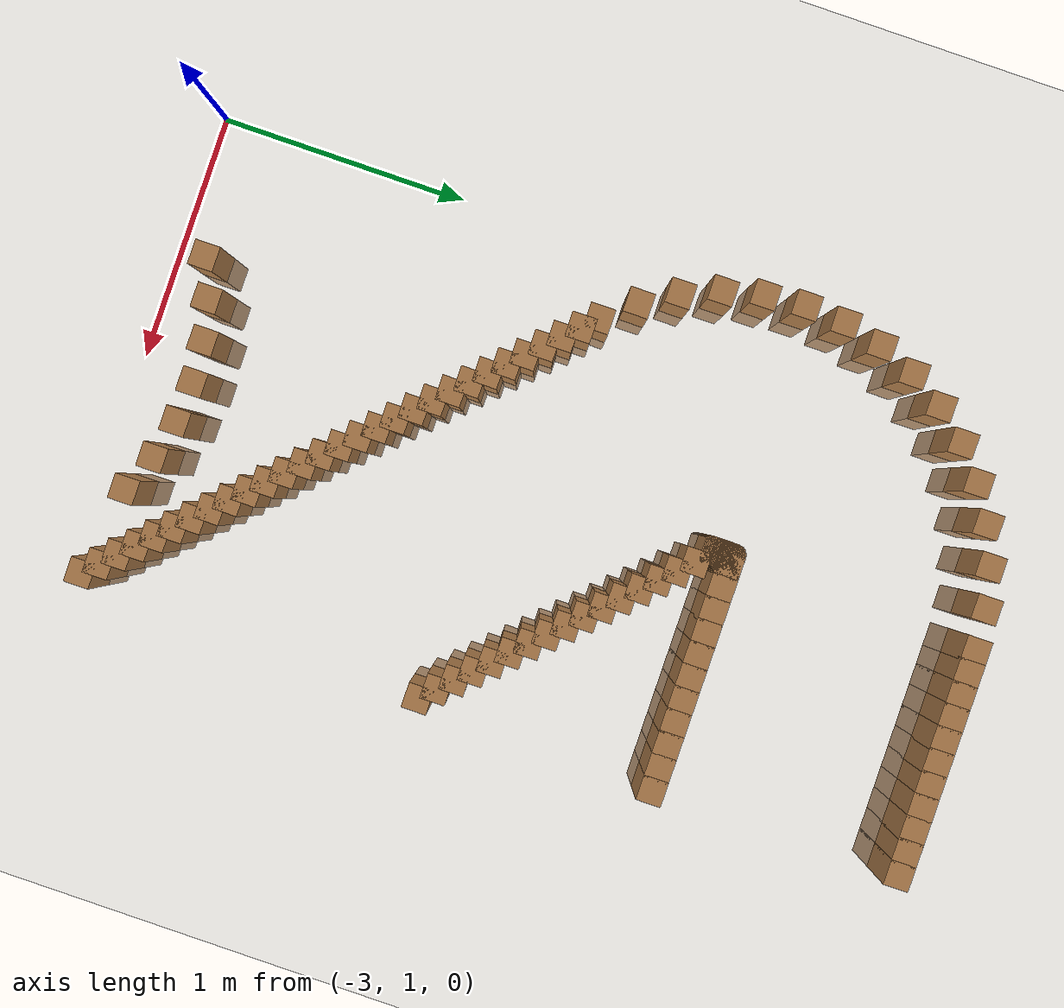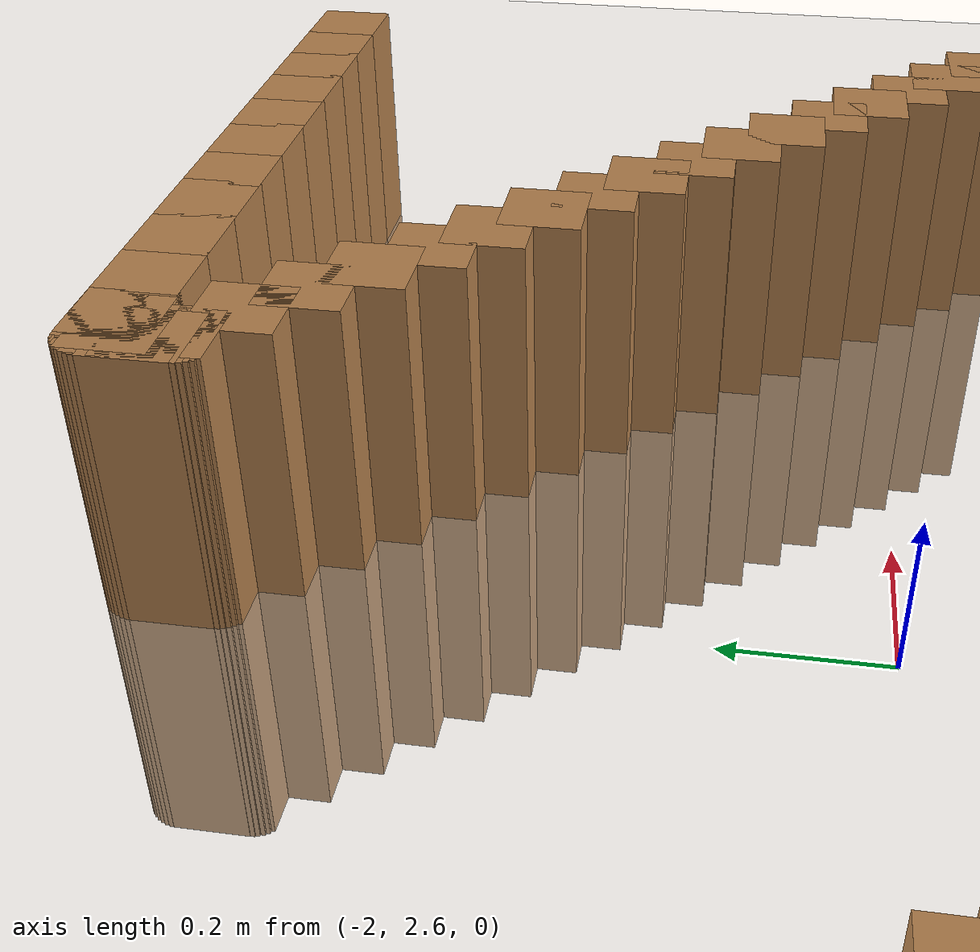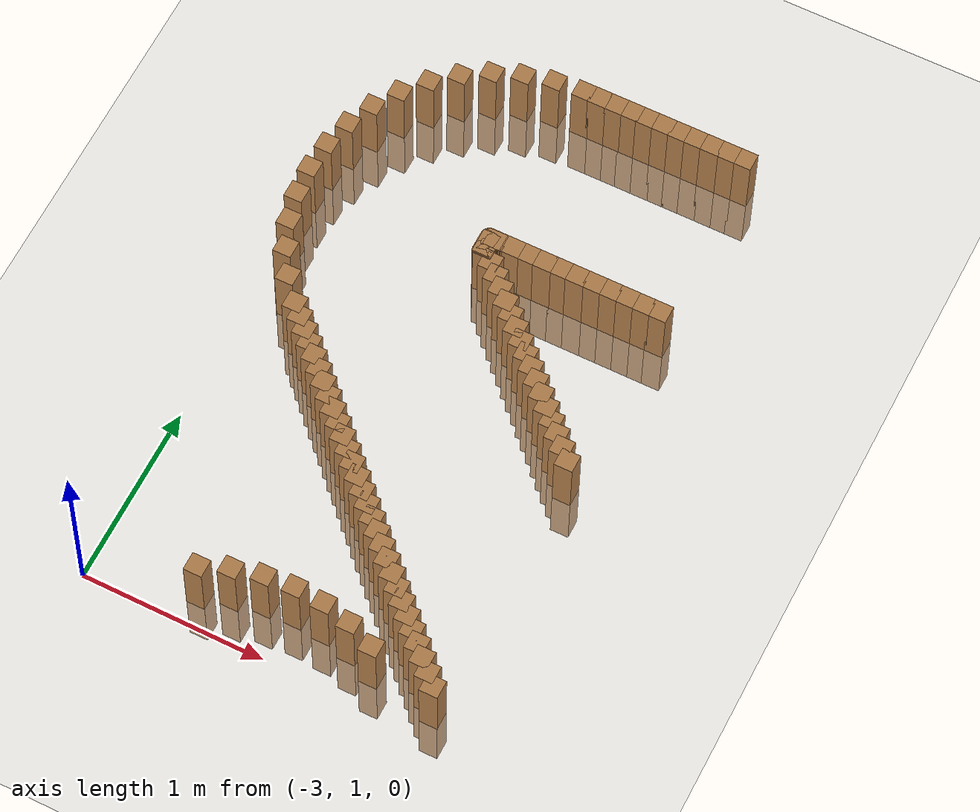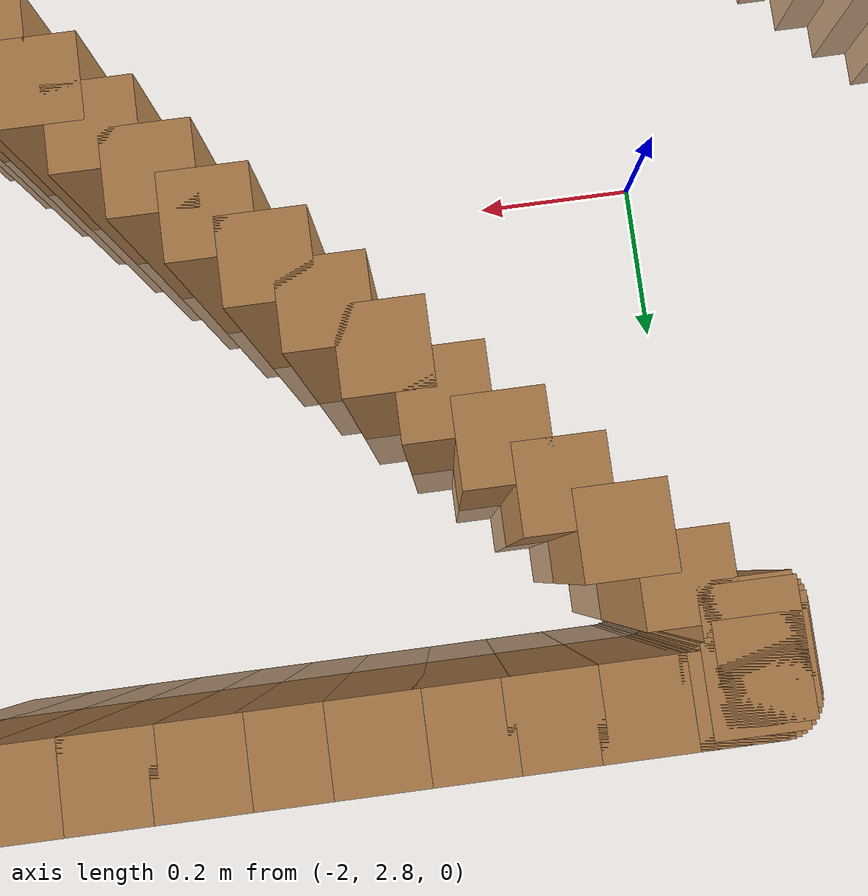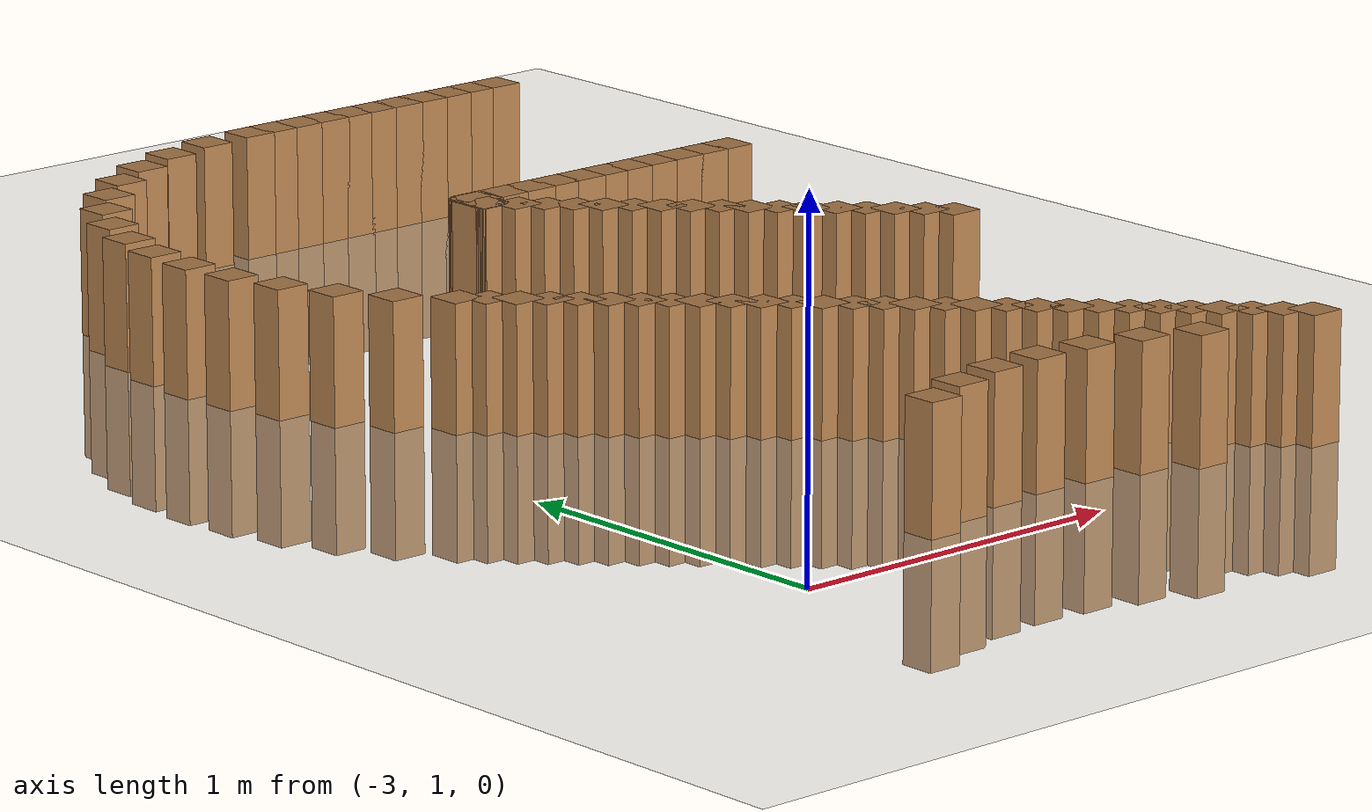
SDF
<sdf version="1.6">
 <world name="default">
  <model name="ground_plane">
   <static>1</static>
   <link name="link">
    <collision name="collision">
     <geometry><plane><normal>0 0 1</normal><size>100 100</size></plane></geometry>
     <surface><friction><ode><mu>100</mu><mu2>50</mu2></ode></friction></surface>
    </collision>
    <visual name="visual">
     <cast_shadows>0</cast_shadows>
     <geometry><plane><normal>0 0 1</normal><size>100 100</size></plane></geometry>
     <material>
      <script><uri>file://media/materials/scripts/gazebo.material</uri><name>Gazebo/Grey</name></script>
     </material>
    </visual>
   </link>
  </model>
  <model name="track">
   <link name="inner_0">
    <pose>-1.932240 3.320853 0.000000 0 -0 0</pose>
    <collision name="collision"><geometry><box><size>0.1 0.1 0.7</size></box></geometry></collision>
    <visual name="visual">
     <geometry><box><size>0.1 0.1 0.7</size></box></geometry>
     <material>
      <script><uri>file://media/materials/scripts/gazebo.material</uri><name>Gazebo/Wood</name></script>
     </material>
    </visual>
   </link>
   <link name="inner_1">
    <pose>-1.876353 3.264966 0.000000 0 -0 0</pose>
    <collision name="collision"><geometry><box><size>0.1 0.1 0.7</size></box></geometry></collision>
    <visual name="visual">
     <geometry><box><size>0.1 0.1 0.7</size></box></geometry>
     <material>
      <script><uri>file://media/materials/scripts/gazebo.material</uri><name>Gazebo/Wood</name></script>
     </material>
    </visual>
   </link>
   <link name="inner_2">
    <pose>-1.820467 3.209080 0.000000 0 -0 0</pose>
    <collision name="collision"><geometry><box><size>0.1 0.1 0.7</size></box></geometry></collision>
    <visual name="visual">
     <geometry><box><size>0.1 0.1 0.7</size></box></geometry>
     <material>
      <script><uri>file://media/materials/scripts/gazebo.material</uri><name>Gazebo/Wood</name></script>
     </material>
    </visual>
   </link>
   <link name="inner_3">
    <pose>-1.764580 3.153193 0.000000 0 -0 0</pose>
    <collision name="collision"><geometry><box><size>0.1 0.1 0.7</size></box></geometry></collision>
    <visual name="visual">
     <geometry><box><size>0.1 0.1 0.7</size></box></geometry>
     <material>
      <script><uri>file://media/materials/scripts/gazebo.material</uri><name>Gazebo/Wood</name></script>
     </material>
    </visual>
   </link>
   <link name="inner_4">
    <pose>-1.708694 3.097307 0.000000 0 -0 0</pose>
    <collision name="collision"><geometry><box><size>0.1 0.1 0.7</size></box></geometry></collision>
    <visual name="visual">
     <geometry><box><size>0.1 0.1 0.7</size></box></geometry>
     <material>
      <script><uri>file://media/materials/scripts/gazebo.material</uri><name>Gazebo/Wood</name></script>
     </material>
    </visual>
   </link>
   <link name="inner_5">
    <pose>-1.652808 3.041421 0.000000 0 -0 0</pose>
    <collision name="collision"><geometry><box><size>0.1 0.1 0.7</size></box></geometry></collision>
    <visual name="visual">
     <geometry><box><size>0.1 0.1 0.7</size></box></geometry>
     <material>
      <script><uri>file://media/materials/scripts/gazebo.material</uri><name>Gazebo/Wood</name></script>
     </material>
    </visual>
   </link>
   <link name="inner_6">
    <pose>-1.596921 2.985534 0.000000 0 -0 0</pose>
    <collision name="collision"><geometry><box><size>0.1 0.1 0.7</size></box></geometry></collision>
    <visual name="visual">
     <geometry><box><size>0.1 0.1 0.7</size></box></geometry>
     <material>
      <script><uri>file://media/materials/scripts/gazebo.material</uri><name>Gazebo/Wood</name></script>
     </material>
    </visual>
   </link>
   <link name="inner_7">
    <pose>-1.541035 2.929648 0.000000 0 -0 0</pose>
    <collision name="collision"><geometry><box><size>0.1 0.1 0.7</size></box></geometry></collision>
    <visual name="visual">
     <geometry><box><size>0.1 0.1 0.7</size></box></geometry>
     <material>
      <script><uri>file://media/materials/scripts/gazebo.material</uri><name>Gazebo/Wood</name></script>
     </material>
    </visual>
   </link>
   <link name="inner_8">
    <pose>-1.485148 2.873761 0.000000 0 -0 0</pose>
    <collision name="collision"><geometry><box><size>0.1 0.1 0.7</size></box></geometry></collision>
    <visual name="visual">
     <geometry><box><size>0.1 0.1 0.7</size></box></geometry>
     <material>
      <script><uri>file://media/materials/scripts/gazebo.material</uri><name>Gazebo/Wood</name></script>
     </material>
    </visual>
   </link>
   <link name="inner_9">
    <pose>-1.429262 2.817875 0.000000 0 -0 0</pose>
    <collision name="collision"><geometry><box><size>0.1 0.1 0.7</size></box></geometry></collision>
    <visual name="visual">
     <geometry><box><size>0.1 0.1 0.7</size></box></geometry>
     <material>
      <script><uri>file://media/materials/scripts/gazebo.material</uri><name>Gazebo/Wood</name></script>
     </material>
    </visual>
   </link>
   <link name="inner_10">
    <pose>-1.373376 2.761989 0.000000 0 -0 0</pose>
    <collision name="collision"><geometry><box><size>0.1 0.1 0.7</size></box></geometry></collision>
    <visual name="visual">
     <geometry><box><size>0.1 0.1 0.7</size></box></geometry>
     <material>
      <script><uri>file://media/materials/scripts/gazebo.material</uri><name>Gazebo/Wood</name></script>
     </material>
    </visual>
   </link>
   <link name="inner_11">
    <pose>-1.317489 2.706102 0.000000 0 -0 0</pose>
    <collision name="collision"><geometry><box><size>0.1 0.1 0.7</size></box></geometry></collision>
    <visual name="visual">
     <geometry><box><size>0.1 0.1 0.7</size></box></geometry>
     <material>
      <script><uri>file://media/materials/scripts/gazebo.material</uri><name>Gazebo/Wood</name></script>
     </material>
    </visual>
   </link>
   <link name="inner_12">
    <pose>-1.261603 2.650216 0.000000 0 -0 0</pose>
    <collision name="collision"><geometry><box><size>0.1 0.1 0.7</size></box></geometry></collision>
    <visual name="visual">
     <geometry><box><size>0.1 0.1 0.7</size></box></geometry>
     <material>
      <script><uri>file://media/materials/scripts/gazebo.material</uri><name>Gazebo/Wood</name></script>
     </material>
    </visual>
   </link>
   <link name="inner_13">
    <pose>-1.205716 2.594329 0.000000 0 -0 0</pose>
    <collision name="collision"><geometry><box><size>0.1 0.1 0.7</size></box></geometry></collision>
    <visual name="visual">
     <geometry><box><size>0.1 0.1 0.7</size></box></geometry>
     <material>
      <script><uri>file://media/materials/scripts/gazebo.material</uri><name>Gazebo/Wood</name></script>
     </material>
    </visual>
   </link>
   <link name="inner_14">
    <pose>-1.149830 2.538443 0.000000 0 -0 0</pose>
    <collision name="collision"><geometry><box><size>0.1 0.1 0.7</size></box></geometry></collision>
    <visual name="visual">
     <geometry><box><size>0.1 0.1 0.7</size></box></geometry>
     <material>
      <script><uri>file://media/materials/scripts/gazebo.material</uri><name>Gazebo/Wood</name></script>
     </material>
    </visual>
   </link>
   <link name="inner_15">
    <pose>-1.093944 2.482557 0.000000 0 -0 0</pose>
    <collision name="collision"><geometry><box><size>0.1 0.1 0.7</size></box></geometry></collision>
    <visual name="visual">
     <geometry><box><size>0.1 0.1 0.7</size></box></geometry>
     <material>
      <script><uri>file://media/materials/scripts/gazebo.material</uri><name>Gazebo/Wood</name></script>
     </material>
    </visual>
   </link>
   <link name="inner_640">
    <pose>-1.050676 3.445946 0.000000 0 -0 0</pose>
    <collision name="collision"><geometry><box><size>0.1 0.1 0.7</size></box></geometry></collision>
    <visual name="visual">
     <geometry><box><size>0.1 0.1 0.7</size></box></geometry>
     <material>
      <script><uri>file://media/materials/scripts/gazebo.material</uri><name>Gazebo/Wood</name></script>
     </material>
    </visual>
   </link>
   <link name="inner_641">
    <pose>-1.141554 3.445946 0.000000 0 -0 0</pose>
    <collision name="collision"><geometry><box><size>0.1 0.1 0.7</size></box></geometry></collision>
    <visual name="visual">
     <geometry><box><size>0.1 0.1 0.7</size></box></geometry>
     <material>
      <script><uri>file://media/materials/scripts/gazebo.material</uri><name>Gazebo/Wood</name></script>
     </material>
    </visual>
   </link>
   <link name="inner_642">
    <pose>-1.232432 3.445946 0.000000 0 -0 0</pose>
    <collision name="collision"><geometry><box><size>0.1 0.1 0.7</size></box></geometry></collision>
    <visual name="visual">
     <geometry><box><size>0.1 0.1 0.7</size></box></geometry>
     <material>
      <script><uri>file://media/materials/scripts/gazebo.material</uri><name>Gazebo/Wood</name></script>
     </material>
    </visual>
   </link>
   <link name="inner_643">
    <pose>-1.323311 3.445946 0.000000 0 -0 0</pose>
    <collision name="collision"><geometry><box><size>0.1 0.1 0.7</size></box></geometry></collision>
    <visual name="visual">
     <geometry><box><size>0.1 0.1 0.7</size></box></geometry>
     <material>
      <script><uri>file://media/materials/scripts/gazebo.material</uri><name>Gazebo/Wood</name></script>
     </material>
    </visual>
   </link>
   <link name="inner_644">
    <pose>-1.414189 3.445946 0.000000 0 -0 0</pose>
    <collision name="collision"><geometry><box><size>0.1 0.1 0.7</size></box></geometry></collision>
    <visual name="visual">
     <geometry><box><size>0.1 0.1 0.7</size></box></geometry>
     <material>
      <script><uri>file://media/materials/scripts/gazebo.material</uri><name>Gazebo/Wood</name></script>
     </material>
    </visual>
   </link>
   <link name="inner_645">
    <pose>-1.505068 3.445946 0.000000 0 -0 0</pose>
    <collision name="collision"><geometry><box><size>0.1 0.1 0.7</size></box></geometry></collision>
    <visual name="visual">
     <geometry><box><size>0.1 0.1 0.7</size></box></geometry>
     <material>
      <script><uri>file://media/materials/scripts/gazebo.material</uri><name>Gazebo/Wood</name></script>
     </material>
    </visual>
   </link>
   <link name="inner_646">
    <pose>-1.595946 3.445946 0.000000 0 -0 0</pose>
    <collision name="collision"><geometry><box><size>0.1 0.1 0.7</size></box></geometry></collision>
    <visual name="visual">
     <geometry><box><size>0.1 0.1 0.7</size></box></geometry>
     <material>
      <script><uri>file://media/materials/scripts/gazebo.material</uri><name>Gazebo/Wood</name></script>
     </material>
    </visual>
   </link>
   <link name="inner_647">
    <pose>-1.686824 3.445946 0.000000 0 -0 0</pose>
    <collision name="collision"><geometry><box><size>0.1 0.1 0.7</size></box></geometry></collision>
    <visual name="visual">
     <geometry><box><size>0.1 0.1 0.7</size></box></geometry>
     <material>
      <script><uri>file://media/materials/scripts/gazebo.material</uri><name>Gazebo/Wood</name></script>
     </material>
    </visual>
   </link>
   <link name="inner_648">
    <pose>-1.777703 3.445946 0.000000 0 -0 0</pose>
    <collision name="collision"><geometry><box><size>0.1 0.1 0.7</size></box></geometry></collision>
    <visual name="visual">
     <geometry><box><size>0.1 0.1 0.7</size></box></geometry>
     <material>
      <script><uri>file://media/materials/scripts/gazebo.material</uri><name>Gazebo/Wood</name></script>
     </material>
    </visual>
   </link>
   <link name="inner_649">
    <pose>-1.868581 3.445946 0.000000 0 -0 0</pose>
    <collision name="collision"><geometry><box><size>0.1 0.1 0.7</size></box></geometry></collision>
    <visual name="visual">
     <geometry><box><size>0.1 0.1 0.7</size></box></geometry>
     <material>
      <script><uri>file://media/materials/scripts/gazebo.material</uri><name>Gazebo/Wood</name></script>
     </material>
    </visual>
   </link>
   <link name="inner_650">
    <pose>-1.959459 3.445946 0.000000 0 -0 0</pose>
    <collision name="collision"><geometry><box><size>0.1 0.1 0.7</size></box></geometry></collision>
    <visual name="visual">
     <geometry><box><size>0.1 0.1 0.7</size></box></geometry>
     <material>
      <script><uri>file://media/materials/scripts/gazebo.material</uri><name>Gazebo/Wood</name></script>
     </material>
    </visual>
   </link>
   <link name="inner_651">
    <pose>-1.965801 3.445447 0.000000 0 -0 0</pose>
    <collision name="collision"><geometry><box><size>0.1 0.1 0.7</size></box></geometry></collision>
    <visual name="visual">
     <geometry><box><size>0.1 0.1 0.7</size></box></geometry>
     <material>
      <script><uri>file://media/materials/scripts/gazebo.material</uri><name>Gazebo/Wood</name></script>
     </material>
    </visual>
   </link>
   <link name="inner_652">
    <pose>-1.971987 3.443962 0.000000 0 -0 0</pose>
    <collision name="collision"><geometry><box><size>0.1 0.1 0.7</size></box></geometry></collision>
    <visual name="visual">
     <geometry><box><size>0.1 0.1 0.7</size></box></geometry>
     <material>
      <script><uri>file://media/materials/scripts/gazebo.material</uri><name>Gazebo/Wood</name></script>
     </material>
    </visual>
   </link>
   <link name="inner_653">
    <pose>-1.977864 3.441527 0.000000 0 -0 0</pose>
    <collision name="collision"><geometry><box><size>0.1 0.1 0.7</size></box></geometry></collision>
    <visual name="visual">
     <geometry><box><size>0.1 0.1 0.7</size></box></geometry>
     <material>
      <script><uri>file://media/materials/scripts/gazebo.material</uri><name>Gazebo/Wood</name></script>
     </material>
    </visual>
   </link>
   <link name="inner_654">
    <pose>-1.983289 3.438203 0.000000 0 -0 0</pose>
    <collision name="collision"><geometry><box><size>0.1 0.1 0.7</size></box></geometry></collision>
    <visual name="visual">
     <geometry><box><size>0.1 0.1 0.7</size></box></geometry>
     <material>
      <script><uri>file://media/materials/scripts/gazebo.material</uri><name>Gazebo/Wood</name></script>
     </material>
    </visual>
   </link>
   <link name="inner_655">
    <pose>-1.988126 3.434072 0.000000 0 -0 0</pose>
    <collision name="collision"><geometry><box><size>0.1 0.1 0.7</size></box></geometry></collision>
    <visual name="visual">
     <geometry><box><size>0.1 0.1 0.7</size></box></geometry>
     <material>
      <script><uri>file://media/materials/scripts/gazebo.material</uri><name>Gazebo/Wood</name></script>
     </material>
    </visual>
   </link>
   <link name="inner_656">
    <pose>-1.992257 3.429235 0.000000 0 -0 0</pose>
    <collision name="collision"><geometry><box><size>0.1 0.1 0.7</size></box></geometry></collision>
    <visual name="visual">
     <geometry><box><size>0.1 0.1 0.7</size></box></geometry>
     <material>
      <script><uri>file://media/materials/scripts/gazebo.material</uri><name>Gazebo/Wood</name></script>
     </material>
    </visual>
   </link>
   <link name="inner_657">
    <pose>-1.995581 3.423810 0.000000 0 -0 0</pose>
    <collision name="collision"><geometry><box><size>0.1 0.1 0.7</size></box></geometry></collision>
    <visual name="visual">
     <geometry><box><size>0.1 0.1 0.7</size></box></geometry>
     <material>
      <script><uri>file://media/materials/scripts/gazebo.material</uri><name>Gazebo/Wood</name></script>
     </material>
    </visual>
   </link>
   <link name="inner_658">
    <pose>-1.998016 3.417933 0.000000 0 -0 0</pose>
    <collision name="collision"><geometry><box><size>0.1 0.1 0.7</size></box></geometry></collision>
    <visual name="visual">
     <geometry><box><size>0.1 0.1 0.7</size></box></geometry>
     <material>
      <script><uri>file://media/materials/scripts/gazebo.material</uri><name>Gazebo/Wood</name></script>
     </material>
    </visual>
   </link>
   <link name="inner_659">
    <pose>-1.999501 3.411747 0.000000 0 -0 0</pose>
    <collision name="collision"><geometry><box><size>0.1 0.1 0.7</size></box></geometry></collision>
    <visual name="visual">
     <geometry><box><size>0.1 0.1 0.7</size></box></geometry>
     <material>
      <script><uri>file://media/materials/scripts/gazebo.material</uri><name>Gazebo/Wood</name></script>
     </material>
    </visual>
   </link>
   <link name="inner_660">
    <pose>-2.000000 3.405405 0.000000 0 -0 0</pose>
    <collision name="collision"><geometry><box><size>0.1 0.1 0.7</size></box></geometry></collision>
    <visual name="visual">
     <geometry><box><size>0.1 0.1 0.7</size></box></geometry>
     <material>
      <script><uri>file://media/materials/scripts/gazebo.material</uri><name>Gazebo/Wood</name></script>
     </material>
    </visual>
   </link>
   <link name="inner_661">
    <pose>-1.999501 3.399063 0.000000 0 -0 0</pose>
    <collision name="collision"><geometry><box><size>0.1 0.1 0.7</size></box></geometry></collision>
    <visual name="visual">
     <geometry><box><size>0.1 0.1 0.7</size></box></geometry>
     <material>
      <script><uri>file://media/materials/scripts/gazebo.material</uri><name>Gazebo/Wood</name></script>
     </material>
    </visual>
   </link>
   <link name="inner_662">
    <pose>-1.998016 3.392878 0.000000 0 -0 0</pose>
    <collision name="collision"><geometry><box><size>0.1 0.1 0.7</size></box></geometry></collision>
    <visual name="visual">
     <geometry><box><size>0.1 0.1 0.7</size></box></geometry>
     <material>
      <script><uri>file://media/materials/scripts/gazebo.material</uri><name>Gazebo/Wood</name></script>
     </material>
    </visual>
   </link>
   <link name="inner_663">
    <pose>-1.995581 3.387000 0.000000 0 -0 0</pose>
    <collision name="collision"><geometry><box><size>0.1 0.1 0.7</size></box></geometry></collision>
    <visual name="visual">
     <geometry><box><size>0.1 0.1 0.7</size></box></geometry>
     <material>
      <script><uri>file://media/materials/scripts/gazebo.material</uri><name>Gazebo/Wood</name></script>
     </material>
    </visual>
   </link>
   <link name="inner_664">
    <pose>-1.992257 3.381576 0.000000 0 -0 0</pose>
    <collision name="collision"><geometry><box><size>0.1 0.1 0.7</size></box></geometry></collision>
    <visual name="visual">
     <geometry><box><size>0.1 0.1 0.7</size></box></geometry>
     <material>
      <script><uri>file://media/materials/scripts/gazebo.material</uri><name>Gazebo/Wood</name></script>
     </material>
    </visual>
   </link>
   <link name="inner_665">
    <pose>-1.988126 3.376739 0.000000 0 -0 0</pose>
    <collision name="collision"><geometry><box><size>0.1 0.1 0.7</size></box></geometry></collision>
    <visual name="visual">
     <geometry><box><size>0.1 0.1 0.7</size></box></geometry>
     <material>
      <script><uri>file://media/materials/scripts/gazebo.material</uri><name>Gazebo/Wood</name></script>
     </material>
    </visual>
   </link>
   <link name="outer_0">
    <pose>-2.639346 2.613746 0.000000 0 -0 0</pose>
    <collision name="collision"><geometry><box><size>0.1 0.1 0.7</size></box></geometry></collision>
    <visual name="visual">
     <geometry><box><size>0.1 0.1 0.7</size></box></geometry>
     <material>
      <script><uri>file://media/materials/scripts/gazebo.material</uri><name>Gazebo/Wood</name></script>
     </material>
    </visual>
   </link>
   <link name="outer_1">
    <pose>-2.583460 2.557859 0.000000 0 -0 0</pose>
    <collision name="collision"><geometry><box><size>0.1 0.1 0.7</size></box></geometry></collision>
    <visual name="visual">
     <geometry><box><size>0.1 0.1 0.7</size></box></geometry>
     <material>
      <script><uri>file://media/materials/scripts/gazebo.material</uri><name>Gazebo/Wood</name></script>
     </material>
    </visual>
   </link>
   <link name="outer_2">
    <pose>-2.527574 2.501973 0.000000 0 -0 0</pose>
    <collision name="collision"><geometry><box><size>0.1 0.1 0.7</size></box></geometry></collision>
    <visual name="visual">
     <geometry><box><size>0.1 0.1 0.7</size></box></geometry>
     <material>
      <script><uri>file://media/materials/scripts/gazebo.material</uri><name>Gazebo/Wood</name></script>
     </material>
    </visual>
   </link>
   <link name="outer_3">
    <pose>-2.471687 2.446087 0.000000 0 -0 0</pose>
    <collision name="collision"><geometry><box><size>0.1 0.1 0.7</size></box></geometry></collision>
    <visual name="visual">
     <geometry><box><size>0.1 0.1 0.7</size></box></geometry>
     <material>
      <script><uri>file://media/materials/scripts/gazebo.material</uri><name>Gazebo/Wood</name></script>
     </material>
    </visual>
   </link>
   <link name="outer_4">
    <pose>-2.415801 2.390200 0.000000 0 -0 0</pose>
    <collision name="collision"><geometry><box><size>0.1 0.1 0.7</size></box></geometry></collision>
    <visual name="visual">
     <geometry><box><size>0.1 0.1 0.7</size></box></geometry>
     <material>
      <script><uri>file://media/materials/scripts/gazebo.material</uri><name>Gazebo/Wood</name></script>
     </material>
    </visual>
   </link>
   <link name="outer_5">
    <pose>-2.359914 2.334314 0.000000 0 -0 0</pose>
    <collision name="collision"><geometry><box><size>0.1 0.1 0.7</size></box></geometry></collision>
    <visual name="visual">
     <geometry><box><size>0.1 0.1 0.7</size></box></geometry>
     <material>
      <script><uri>file://media/materials/scripts/gazebo.material</uri><name>Gazebo/Wood</name></script>
     </material>
    </visual>
   </link>
   <link name="outer_6">
    <pose>-2.304028 2.278427 0.000000 0 -0 0</pose>
    <collision name="collision"><geometry><box><size>0.1 0.1 0.7</size></box></geometry></collision>
    <visual name="visual">
     <geometry><box><size>0.1 0.1 0.7</size></box></geometry>
     <material>
      <script><uri>file://media/materials/scripts/gazebo.material</uri><name>Gazebo/Wood</name></script>
     </material>
    </visual>
   </link>
   <link name="outer_7">
    <pose>-2.248142 2.222541 0.000000 0 -0 0</pose>
    <collision name="collision"><geometry><box><size>0.1 0.1 0.7</size></box></geometry></collision>
    <visual name="visual">
     <geometry><box><size>0.1 0.1 0.7</size></box></geometry>
     <material>
      <script><uri>file://media/materials/scripts/gazebo.material</uri><name>Gazebo/Wood</name></script>
     </material>
    </visual>
   </link>
   <link name="outer_8">
    <pose>-2.192255 2.166655 0.000000 0 -0 0</pose>
    <collision name="collision"><geometry><box><size>0.1 0.1 0.7</size></box></geometry></collision>
    <visual name="visual">
     <geometry><box><size>0.1 0.1 0.7</size></box></geometry>
     <material>
      <script><uri>file://media/materials/scripts/gazebo.material</uri><name>Gazebo/Wood</name></script>
     </material>
    </visual>
   </link>
   <link name="outer_9">
    <pose>-2.136369 2.110768 0.000000 0 -0 0</pose>
    <collision name="collision"><geometry><box><size>0.1 0.1 0.7</size></box></geometry></collision>
    <visual name="visual">
     <geometry><box><size>0.1 0.1 0.7</size></box></geometry>
     <material>
      <script><uri>file://media/materials/scripts/gazebo.material</uri><name>Gazebo/Wood</name></script>
     </material>
    </visual>
   </link>
   <link name="outer_10">
    <pose>-2.080482 2.054882 0.000000 0 -0 0</pose>
    <collision name="collision"><geometry><box><size>0.1 0.1 0.7</size></box></geometry></collision>
    <visual name="visual">
     <geometry><box><size>0.1 0.1 0.7</size></box></geometry>
     <material>
      <script><uri>file://media/materials/scripts/gazebo.material</uri><name>Gazebo/Wood</name></script>
     </material>
    </visual>
   </link>
   <link name="outer_11">
    <pose>-2.024596 1.998995 0.000000 0 -0 0</pose>
    <collision name="collision"><geometry><box><size>0.1 0.1 0.7</size></box></geometry></collision>
    <visual name="visual">
     <geometry><box><size>0.1 0.1 0.7</size></box></geometry>
     <material>
      <script><uri>file://media/materials/scripts/gazebo.material</uri><name>Gazebo/Wood</name></script>
     </material>
    </visual>
   </link>
   <link name="outer_12">
    <pose>-1.968710 1.943109 0.000000 0 -0 0</pose>
    <collision name="collision"><geometry><box><size>0.1 0.1 0.7</size></box></geometry></collision>
    <visual name="visual">
     <geometry><box><size>0.1 0.1 0.7</size></box></geometry>
     <material>
      <script><uri>file://media/materials/scripts/gazebo.material</uri><name>Gazebo/Wood</name></script>
     </material>
    </visual>
   </link>
   <link name="outer_13">
    <pose>-1.912823 1.887223 0.000000 0 -0 0</pose>
    <collision name="collision"><geometry><box><size>0.1 0.1 0.7</size></box></geometry></collision>
    <visual name="visual">
     <geometry><box><size>0.1 0.1 0.7</size></box></geometry>
     <material>
      <script><uri>file://media/materials/scripts/gazebo.material</uri><name>Gazebo/Wood</name></script>
     </material>
    </visual>
   </link>
   <link name="outer_14">
    <pose>-1.856937 1.831336 0.000000 0 -0 0</pose>
    <collision name="collision"><geometry><box><size>0.1 0.1 0.7</size></box></geometry></collision>
    <visual name="visual">
     <geometry><box><size>0.1 0.1 0.7</size></box></geometry>
     <material>
      <script><uri>file://media/materials/scripts/gazebo.material</uri><name>Gazebo/Wood</name></script>
     </material>
    </visual>
   </link>
   <link name="outer_15">
    <pose>-1.801050 1.775450 0.000000 0 -0 0</pose>
    <collision name="collision"><geometry><box><size>0.1 0.1 0.7</size></box></geometry></collision>
    <visual name="visual">
     <geometry><box><size>0.1 0.1 0.7</size></box></geometry>
     <material>
      <script><uri>file://media/materials/scripts/gazebo.material</uri><name>Gazebo/Wood</name></script>
     </material>
    </visual>
   </link>
   <link name="outer_16">
    <pose>-1.745164 1.719563 0.000000 0 -0 0</pose>
    <collision name="collision"><geometry><box><size>0.1 0.1 0.7</size></box></geometry></collision>
    <visual name="visual">
     <geometry><box><size>0.1 0.1 0.7</size></box></geometry>
     <material>
      <script><uri>file://media/materials/scripts/gazebo.material</uri><name>Gazebo/Wood</name></script>
     </material>
    </visual>
   </link>
   <link name="outer_17">
    <pose>-1.689278 1.663677 0.000000 0 -0 0</pose>
    <collision name="collision"><geometry><box><size>0.1 0.1 0.7</size></box></geometry></collision>
    <visual name="visual">
     <geometry><box><size>0.1 0.1 0.7</size></box></geometry>
     <material>
      <script><uri>file://media/materials/scripts/gazebo.material</uri><name>Gazebo/Wood</name></script>
     </material>
    </visual>
   </link>
   <link name="outer_18">
    <pose>-1.633391 1.607791 0.000000 0 -0 0</pose>
    <collision name="collision"><geometry><box><size>0.1 0.1 0.7</size></box></geometry></collision>
    <visual name="visual">
     <geometry><box><size>0.1 0.1 0.7</size></box></geometry>
     <material>
      <script><uri>file://media/materials/scripts/gazebo.material</uri><name>Gazebo/Wood</name></script>
     </material>
    </visual>
   </link>
   <link name="outer_19">
    <pose>-1.577505 1.551904 0.000000 0 -0 0</pose>
    <collision name="collision"><geometry><box><size>0.1 0.1 0.7</size></box></geometry></collision>
    <visual name="visual">
     <geometry><box><size>0.1 0.1 0.7</size></box></geometry>
     <material>
      <script><uri>file://media/materials/scripts/gazebo.material</uri><name>Gazebo/Wood</name></script>
     </material>
    </visual>
   </link>
   <link name="outer_20">
    <pose>-1.521618 1.496018 0.000000 0 -0 0</pose>
    <collision name="collision"><geometry><box><size>0.1 0.1 0.7</size></box></geometry></collision>
    <visual name="visual">
     <geometry><box><size>0.1 0.1 0.7</size></box></geometry>
     <material>
      <script><uri>file://media/materials/scripts/gazebo.material</uri><name>Gazebo/Wood</name></script>
     </material>
    </visual>
   </link>
   <link name="outer_21">
    <pose>-1.465732 1.440131 0.000000 0 -0 0</pose>
    <collision name="collision"><geometry><box><size>0.1 0.1 0.7</size></box></geometry></collision>
    <visual name="visual">
     <geometry><box><size>0.1 0.1 0.7</size></box></geometry>
     <material>
      <script><uri>file://media/materials/scripts/gazebo.material</uri><name>Gazebo/Wood</name></script>
     </material>
    </visual>
   </link>
   <link name="outer_22">
    <pose>-1.409846 1.384245 0.000000 0 -0 0</pose>
    <collision name="collision"><geometry><box><size>0.1 0.1 0.7</size></box></geometry></collision>
    <visual name="visual">
     <geometry><box><size>0.1 0.1 0.7</size></box></geometry>
     <material>
      <script><uri>file://media/materials/scripts/gazebo.material</uri><name>Gazebo/Wood</name></script>
     </material>
    </visual>
   </link>
   <link name="outer_23">
    <pose>-1.353959 1.328359 0.000000 0 -0 0</pose>
    <collision name="collision"><geometry><box><size>0.1 0.1 0.7</size></box></geometry></collision>
    <visual name="visual">
     <geometry><box><size>0.1 0.1 0.7</size></box></geometry>
     <material>
      <script><uri>file://media/materials/scripts/gazebo.material</uri><name>Gazebo/Wood</name></script>
     </material>
    </visual>
   </link>
   <link name="outer_24">
    <pose>-1.298073 1.272472 0.000000 0 -0 0</pose>
    <collision name="collision"><geometry><box><size>0.1 0.1 0.7</size></box></geometry></collision>
    <visual name="visual">
     <geometry><box><size>0.1 0.1 0.7</size></box></geometry>
     <material>
      <script><uri>file://media/materials/scripts/gazebo.material</uri><name>Gazebo/Wood</name></script>
     </material>
    </visual>
   </link>
   <link name="outer_25">
    <pose>-1.242186 1.216586 0.000000 0 -0 0</pose>
    <collision name="collision"><geometry><box><size>0.1 0.1 0.7</size></box></geometry></collision>
    <visual name="visual">
     <geometry><box><size>0.1 0.1 0.7</size></box></geometry>
     <material>
      <script><uri>file://media/materials/scripts/gazebo.material</uri><name>Gazebo/Wood</name></script>
     </material>
    </visual>
   </link>
   <link name="outer_26">
    <pose>-1.186300 1.160699 0.000000 0 -0 0</pose>
    <collision name="collision"><geometry><box><size>0.1 0.1 0.7</size></box></geometry></collision>
    <visual name="visual">
     <geometry><box><size>0.1 0.1 0.7</size></box></geometry>
     <material>
      <script><uri>file://media/materials/scripts/gazebo.material</uri><name>Gazebo/Wood</name></script>
     </material>
    </visual>
   </link>
   <link name="outer_27">
    <pose>-1.130414 1.104813 0.000000 0 -0 0</pose>
    <collision name="collision"><geometry><box><size>0.1 0.1 0.7</size></box></geometry></collision>
    <visual name="visual">
     <geometry><box><size>0.1 0.1 0.7</size></box></geometry>
     <material>
      <script><uri>file://media/materials/scripts/gazebo.material</uri><name>Gazebo/Wood</name></script>
     </material>
    </visual>
   </link>
   <link name="outer_305">
    <pose>-1.487064 1.160109 0.000000 0 -0 0</pose>
    <collision name="collision"><geometry><box><size>0.1 0.1 0.7</size></box></geometry></collision>
    <visual name="visual">
     <geometry><box><size>0.1 0.1 0.7</size></box></geometry>
     <material>
      <script><uri>file://media/materials/scripts/gazebo.material</uri><name>Gazebo/Wood</name></script>
     </material>
    </visual>
   </link>
   <link name="outer_306">
    <pose>-1.637915 1.222593 0.000000 0 -0 0</pose>
    <collision name="collision"><geometry><box><size>0.1 0.1 0.7</size></box></geometry></collision>
    <visual name="visual">
     <geometry><box><size>0.1 0.1 0.7</size></box></geometry>
     <material>
      <script><uri>file://media/materials/scripts/gazebo.material</uri><name>Gazebo/Wood</name></script>
     </material>
    </visual>
   </link>
   <link name="outer_307">
    <pose>-1.796683 1.260710 0.000000 0 -0 0</pose>
    <collision name="collision"><geometry><box><size>0.1 0.1 0.7</size></box></geometry></collision>
    <visual name="visual">
     <geometry><box><size>0.1 0.1 0.7</size></box></geometry>
     <material>
      <script><uri>file://media/materials/scripts/gazebo.material</uri><name>Gazebo/Wood</name></script>
     </material>
    </visual>
   </link>
   <link name="outer_308">
    <pose>-1.959459 1.273521 0.000000 0 -0 0</pose>
    <collision name="collision"><geometry><box><size>0.1 0.1 0.7</size></box></geometry></collision>
    <visual name="visual">
     <geometry><box><size>0.1 0.1 0.7</size></box></geometry>
     <material>
      <script><uri>file://media/materials/scripts/gazebo.material</uri><name>Gazebo/Wood</name></script>
     </material>
    </visual>
   </link>
   <link name="outer_309">
    <pose>-2.122236 1.260710 0.000000 0 -0 0</pose>
    <collision name="collision"><geometry><box><size>0.1 0.1 0.7</size></box></geometry></collision>
    <visual name="visual">
     <geometry><box><size>0.1 0.1 0.7</size></box></geometry>
     <material>
      <script><uri>file://media/materials/scripts/gazebo.material</uri><name>Gazebo/Wood</name></script>
     </material>
    </visual>
   </link>
   <link name="outer_310">
    <pose>-2.281004 1.222593 0.000000 0 -0 0</pose>
    <collision name="collision"><geometry><box><size>0.1 0.1 0.7</size></box></geometry></collision>
    <visual name="visual">
     <geometry><box><size>0.1 0.1 0.7</size></box></geometry>
     <material>
      <script><uri>file://media/materials/scripts/gazebo.material</uri><name>Gazebo/Wood</name></script>
     </material>
    </visual>
   </link>
   <link name="outer_311">
    <pose>-2.431855 1.160109 0.000000 0 -0 0</pose>
    <collision name="collision"><geometry><box><size>0.1 0.1 0.7</size></box></geometry></collision>
    <visual name="visual">
     <geometry><box><size>0.1 0.1 0.7</size></box></geometry>
     <material>
      <script><uri>file://media/materials/scripts/gazebo.material</uri><name>Gazebo/Wood</name></script>
     </material>
    </visual>
   </link>
   <link name="outer_640">
    <pose>-1.050676 4.445946 0.000000 0 -0 0</pose>
    <collision name="collision"><geometry><box><size>0.1 0.1 0.7</size></box></geometry></collision>
    <visual name="visual">
     <geometry><box><size>0.1 0.1 0.7</size></box></geometry>
     <material>
      <script><uri>file://media/materials/scripts/gazebo.material</uri><name>Gazebo/Wood</name></script>
     </material>
    </visual>
   </link>
   <link name="outer_641">
    <pose>-1.141554 4.445946 0.000000 0 -0 0</pose>
    <collision name="collision"><geometry><box><size>0.1 0.1 0.7</size></box></geometry></collision>
    <visual name="visual">
     <geometry><box><size>0.1 0.1 0.7</size></box></geometry>
     <material>
      <script><uri>file://media/materials/scripts/gazebo.material</uri><name>Gazebo/Wood</name></script>
     </material>
    </visual>
   </link>
   <link name="outer_642">
    <pose>-1.232432 4.445946 0.000000 0 -0 0</pose>
    <collision name="collision"><geometry><box><size>0.1 0.1 0.7</size></box></geometry></collision>
    <visual name="visual">
     <geometry><box><size>0.1 0.1 0.7</size></box></geometry>
     <material>
      <script><uri>file://media/materials/scripts/gazebo.material</uri><name>Gazebo/Wood</name></script>
     </material>
    </visual>
   </link>
   <link name="outer_643">
    <pose>-1.323311 4.445946 0.000000 0 -0 0</pose>
    <collision name="collision"><geometry><box><size>0.1 0.1 0.7</size></box></geometry></collision>
    <visual name="visual">
     <geometry><box><size>0.1 0.1 0.7</size></box></geometry>
     <material>
      <script><uri>file://media/materials/scripts/gazebo.material</uri><name>Gazebo/Wood</name></script>
     </material>
    </visual>
   </link>
   <link name="outer_644">
    <pose>-1.414189 4.445946 0.000000 0 -0 0</pose>
    <collision name="collision"><geometry><box><size>0.1 0.1 0.7</size></box></geometry></collision>
    <visual name="visual">
     <geometry><box><size>0.1 0.1 0.7</size></box></geometry>
     <material>
      <script><uri>file://media/materials/scripts/gazebo.material</uri><name>Gazebo/Wood</name></script>
     </material>
    </visual>
   </link>
   <link name="outer_645">
    <pose>-1.505068 4.445946 0.000000 0 -0 0</pose>
    <collision name="collision"><geometry><box><size>0.1 0.1 0.7</size></box></geometry></collision>
    <visual name="visual">
     <geometry><box><size>0.1 0.1 0.7</size></box></geometry>
     <material>
      <script><uri>file://media/materials/scripts/gazebo.material</uri><name>Gazebo/Wood</name></script>
     </material>
    </visual>
   </link>
   <link name="outer_646">
    <pose>-1.595946 4.445946 0.000000 0 -0 0</pose>
    <collision name="collision"><geometry><box><size>0.1 0.1 0.7</size></box></geometry></collision>
    <visual name="visual">
     <geometry><box><size>0.1 0.1 0.7</size></box></geometry>
     <material>
      <script><uri>file://media/materials/scripts/gazebo.material</uri><name>Gazebo/Wood</name></script>
     </material>
    </visual>
   </link>
   <link name="outer_647">
    <pose>-1.686824 4.445946 0.000000 0 -0 0</pose>
    <collision name="collision"><geometry><box><size>0.1 0.1 0.7</size></box></geometry></collision>
    <visual name="visual">
     <geometry><box><size>0.1 0.1 0.7</size></box></geometry>
     <material>
      <script><uri>file://media/materials/scripts/gazebo.material</uri><name>Gazebo/Wood</name></script>
     </material>
    </visual>
   </link>
   <link name="outer_648">
    <pose>-1.777703 4.445946 0.000000 0 -0 0</pose>
    <collision name="collision"><geometry><box><size>0.1 0.1 0.7</size></box></geometry></collision>
    <visual name="visual">
     <geometry><box><size>0.1 0.1 0.7</size></box></geometry>
     <material>
      <script><uri>file://media/materials/scripts/gazebo.material</uri><name>Gazebo/Wood</name></script>
     </material>
    </visual>
   </link>
   <link name="outer_649">
    <pose>-1.868581 4.445946 0.000000 0 -0 0</pose>
    <collision name="collision"><geometry><box><size>0.1 0.1 0.7</size></box></geometry></collision>
    <visual name="visual">
     <geometry><box><size>0.1 0.1 0.7</size></box></geometry>
     <material>
      <script><uri>file://media/materials/scripts/gazebo.material</uri><name>Gazebo/Wood</name></script>
     </material>
    </visual>
   </link>
   <link name="outer_650">
    <pose>-1.959459 4.445946 0.000000 0 -0 0</pose>
    <collision name="collision"><geometry><box><size>0.1 0.1 0.7</size></box></geometry></collision>
    <visual name="visual">
     <geometry><box><size>0.1 0.1 0.7</size></box></geometry>
     <material>
      <script><uri>file://media/materials/scripts/gazebo.material</uri><name>Gazebo/Wood</name></script>
     </material>
    </visual>
   </link>
   <link name="outer_651">
    <pose>-2.122236 4.433135 0.000000 0 -0 0</pose>
    <collision name="collision"><geometry><box><size>0.1 0.1 0.7</size></box></geometry></collision>
    <visual name="visual">
     <geometry><box><size>0.1 0.1 0.7</size></box></geometry>
     <material>
      <script><uri>file://media/materials/scripts/gazebo.material</uri><name>Gazebo/Wood</name></script>
     </material>
    </visual>
   </link>
   <link name="outer_652">
    <pose>-2.281004 4.395018 0.000000 0 -0 0</pose>
    <collision name="collision"><geometry><box><size>0.1 0.1 0.7</size></box></geometry></collision>
    <visual name="visual">
     <geometry><box><size>0.1 0.1 0.7</size></box></geometry>
     <material>
      <script><uri>file://media/materials/scripts/gazebo.material</uri><name>Gazebo/Wood</name></script>
     </material>
    </visual>
   </link>
   <link name="outer_653">
    <pose>-2.431855 4.332534 0.000000 0 -0 0</pose>
    <collision name="collision"><geometry><box><size>0.1 0.1 0.7</size></box></geometry></collision>
    <visual name="visual">
     <geometry><box><size>0.1 0.1 0.7</size></box></geometry>
     <material>
      <script><uri>file://media/materials/scripts/gazebo.material</uri><name>Gazebo/Wood</name></script>
     </material>
    </visual>
   </link>
   <link name="outer_654">
    <pose>-2.571074 4.247220 0.000000 0 -0 0</pose>
    <collision name="collision"><geometry><box><size>0.1 0.1 0.7</size></box></geometry></collision>
    <visual name="visual">
     <geometry><box><size>0.1 0.1 0.7</size></box></geometry>
     <material>
      <script><uri>file://media/materials/scripts/gazebo.material</uri><name>Gazebo/Wood</name></script>
     </material>
    </visual>
   </link>
   <link name="outer_655">
    <pose>-2.695233 4.141179 0.000000 0 -0 0</pose>
    <collision name="collision"><geometry><box><size>0.1 0.1 0.7</size></box></geometry></collision>
    <visual name="visual">
     <geometry><box><size>0.1 0.1 0.7</size></box></geometry>
     <material>
      <script><uri>file://media/materials/scripts/gazebo.material</uri><name>Gazebo/Wood</name></script>
     </material>
    </visual>
   </link>
   <link name="outer_656">
    <pose>-2.801274 4.017020 0.000000 0 -0 0</pose>
    <collision name="collision"><geometry><box><size>0.1 0.1 0.7</size></box></geometry></collision>
    <visual name="visual">
     <geometry><box><size>0.1 0.1 0.7</size></box></geometry>
     <material>
      <script><uri>file://media/materials/scripts/gazebo.material</uri><name>Gazebo/Wood</name></script>
     </material>
    </visual>
   </link>
   <link name="outer_657">
    <pose>-2.886588 3.877801 0.000000 0 -0 0</pose>
    <collision name="collision"><geometry><box><size>0.1 0.1 0.7</size></box></geometry></collision>
    <visual name="visual">
     <geometry><box><size>0.1 0.1 0.7</size></box></geometry>
     <material>
      <script><uri>file://media/materials/scripts/gazebo.material</uri><name>Gazebo/Wood</name></script>
     </material>
    </visual>
   </link>
   <link name="outer_658">
    <pose>-2.949072 3.726950 0.000000 0 -0 0</pose>
    <collision name="collision"><geometry><box><size>0.1 0.1 0.7</size></box></geometry></collision>
    <visual name="visual">
     <geometry><box><size>0.1 0.1 0.7</size></box></geometry>
     <material>
      <script><uri>file://media/materials/scripts/gazebo.material</uri><name>Gazebo/Wood</name></script>
     </material>
    </visual>
   </link>
   <link name="outer_659">
    <pose>-2.987189 3.568182 0.000000 0 -0 0</pose>
    <collision name="collision"><geometry><box><size>0.1 0.1 0.7</size></box></geometry></collision>
    <visual name="visual">
     <geometry><box><size>0.1 0.1 0.7</size></box></geometry>
     <material>
      <script><uri>file://media/materials/scripts/gazebo.material</uri><name>Gazebo/Wood</name></script>
     </material>
    </visual>
   </link>
   <link name="outer_660">
    <pose>-3.000000 3.405405 0.000000 0 -0 0</pose>
    <collision name="collision"><geometry><box><size>0.1 0.1 0.7</size></box></geometry></collision>
    <visual name="visual">
     <geometry><box><size>0.1 0.1 0.7</size></box></geometry>
     <material>
      <script><uri>file://media/materials/scripts/gazebo.material</uri><name>Gazebo/Wood</name></script>
     </material>
    </visual>
   </link>
   <link name="outer_661">
    <pose>-2.987189 3.242629 0.000000 0 -0 0</pose>
    <collision name="collision"><geometry><box><size>0.1 0.1 0.7</size></box></geometry></collision>
    <visual name="visual">
     <geometry><box><size>0.1 0.1 0.7</size></box></geometry>
     <material>
      <script><uri>file://media/materials/scripts/gazebo.material</uri><name>Gazebo/Wood</name></script>
     </material>
    </visual>
   </link>
   <link name="outer_662">
    <pose>-2.949072 3.083861 0.000000 0 -0 0</pose>
    <collision name="collision"><geometry><box><size>0.1 0.1 0.7</size></box></geometry></collision>
    <visual name="visual">
     <geometry><box><size>0.1 0.1 0.7</size></box></geometry>
     <material>
      <script><uri>file://media/materials/scripts/gazebo.material</uri><name>Gazebo/Wood</name></script>
     </material>
    </visual>
   </link>
   <link name="outer_663">
    <pose>-2.886588 2.933010 0.000000 0 -0 0</pose>
    <collision name="collision"><geometry><box><size>0.1 0.1 0.7</size></box></geometry></collision>
    <visual name="visual">
     <geometry><box><size>0.1 0.1 0.7</size></box></geometry>
     <material>
      <script><uri>file://media/materials/scripts/gazebo.material</uri><name>Gazebo/Wood</name></script>
     </material>
    </visual>
   </link>
   <link name="outer_664">
    <pose>-2.801274 2.793791 0.000000 0 -0 0</pose>
    <collision name="collision"><geometry><box><size>0.1 0.1 0.7</size></box></geometry></collision>
    <visual name="visual">
     <geometry><box><size>0.1 0.1 0.7</size></box></geometry>
     <material>
      <script><uri>file://media/materials/scripts/gazebo.material</uri><name>Gazebo/Wood</name></script>
     </material>
    </visual>
   </link>
   <link name="outer_665">
    <pose>-2.695233 2.669632 0.000000 0 -0 0</pose>
    <collision name="collision"><geometry><box><size>0.1 0.1 0.7</size></box></geometry></collision>
    <visual name="visual">
     <geometry><box><size>0.1 0.1 0.7</size></box></geometry>
     <material>
      <script><uri>file://media/materials/scripts/gazebo.material</uri><name>Gazebo/Wood</name></script>
     </material>
    </visual>
   </link>
   <static>1</static>
  </model>
 </world>
</sdf>
